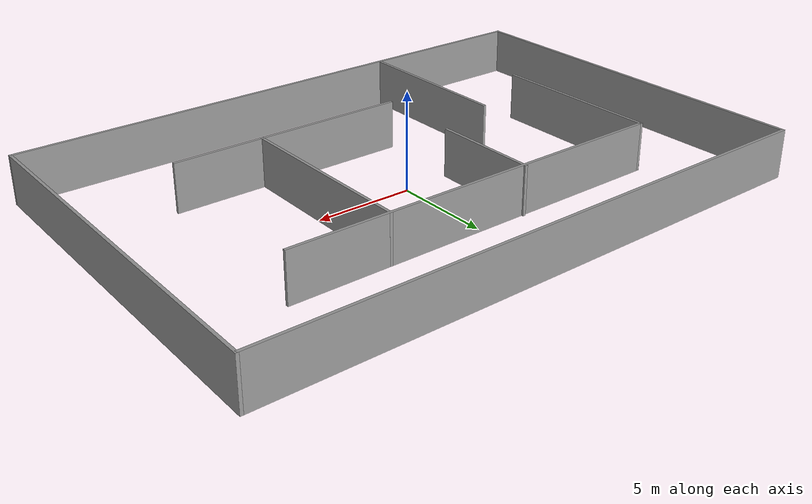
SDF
<?xml version='1.0'?>
<sdf version='1.7'>
  <model name='base.world'>
    <pose>0 0 0 0 -0 0</pose>
    <link name='Wall_0'>
      <collision name='Wall_0_Collision'>
        <geometry>
          <box>
            <size>20.15 0.15 2.5</size>
          </box>
        </geometry>
        <pose>0 0 1.25 0 -0 0</pose>
      </collision>
      <visual name='Wall_0_Visual'>
        <pose>0 0 1.25 0 -0 0</pose>
        <geometry>
          <box>
            <size>20.15 0.15 2.5</size>
          </box>
        </geometry>
        <material>
          <script>
            <uri>file://media/materials/scripts/gazebo.material</uri>
            <name>Gazebo/Grey</name>
          </script>
          <ambient>1 1 1 1</ambient>
        </material>
        <meta>
          <layer>0</layer>
        </meta>
      </visual>
      <pose>-15 0 0 0 -0 1.5708</pose>
    </link>
    <link name='Wall_11'>
      <collision name='Wall_11_Collision'>
        <geometry>
          <box>
            <size>9 0.15 2.5</size>
          </box>
        </geometry>
        <pose>0 0 1.25 0 -0 0</pose>
      </collision>
      <visual name='Wall_11_Visual'>
        <pose>0 0 1.25 0 -0 0</pose>
        <geometry>
          <box>
            <size>9 0.15 2.5</size>
          </box>
        </geometry>
        <material>
          <script>
            <uri>file://media/materials/scripts/gazebo.material</uri>
            <name>Gazebo/Grey</name>
          </script>
          <ambient>1 1 1 1</ambient>
        </material>
        <meta>
          <layer>0</layer>
        </meta>
      </visual>
      <pose>-10.331 0.772623 0 0 -0 1.5708</pose>
    </link>
    <link name='Wall_12'>
      <collision name='Wall_12_Collision'>
        <geometry>
          <box>
            <size>20.5 0.15 2.5</size>
          </box>
        </geometry>
        <pose>0 0 1.25 0 -0 0</pose>
      </collision>
      <visual name='Wall_12_Visual'>
        <pose>0 0 1.25 0 -0 0</pose>
        <geometry>
          <box>
            <size>20.5 0.15 2.5</size>
          </box>
        </geometry>
        <material>
          <script>
            <uri>file://media/materials/scripts/gazebo.material</uri>
            <name>Gazebo/Grey</name>
          </script>
          <ambient>1 1 1 1</ambient>
        </material>
        <meta>
          <layer>0</layer>
        </meta>
      </visual>
      <pose>-0.155983 5.19762 0 0 -0 0</pose>
    </link>
    <link name='Wall_14'>
      <collision name='Wall_14_Collision'>
        <geometry>
          <box>
            <size>8.829 0.15 2.5</size>
          </box>
        </geometry>
        <pose>0 0 1.25 0 -0 0</pose>
      </collision>
      <visual name='Wall_14_Visual'>
        <pose>0 0 1.25 0 -0 0</pose>
        <geometry>
          <box>
            <size>8.829 0.15 2.5</size>
          </box>
        </geometry>
        <material>
          <script>
            <uri>file://media/materials/scripts/gazebo.material</uri>
            <name>Gazebo/Grey</name>
          </script>
          <ambient>1 1 1 1</ambient>
        </material>
        <meta>
          <layer>0</layer>
        </meta>
      </visual>
      <pose>-6 -5.6605 0 0 -0 1.5708</pose>
    </link>
    <link name='Wall_16'>
      <collision name='Wall_16_Collision'>
        <geometry>
          <box>
            <size>9.982 0.15 2.5</size>
          </box>
        </geometry>
        <pose>0 0 1.25 0 -0 0</pose>
      </collision>
      <visual name='Wall_16_Visual'>
        <pose>0 0 1.25 0 -0 0</pose>
        <geometry>
          <box>
            <size>9.982 0.15 2.5</size>
          </box>
        </geometry>
        <material>
          <script>
            <uri>file://media/materials/scripts/gazebo.material</uri>
            <name>Gazebo/Grey</name>
          </script>
          <ambient>1 1 1 1</ambient>
        </material>
        <meta>
          <layer>0</layer>
        </meta>
      </visual>
      <pose>5 0.282 0 0 -0 -1.5708</pose>
    </link>
    <link name='Wall_18'>
      <collision name='Wall_18_Collision'>
        <geometry>
          <box>
            <size>4.721 0.15 2.5</size>
          </box>
        </geometry>
        <pose>0 0 1.25 0 -0 0</pose>
      </collision>
      <visual name='Wall_18_Visual'>
        <pose>0 0 1.25 0 -0 0</pose>
        <geometry>
          <box>
            <size>4.721 0.15 2.5</size>
          </box>
        </geometry>
        <material>
          <script>
            <uri>file://media/materials/scripts/gazebo.material</uri>
            <name>Gazebo/Grey</name>
          </script>
          <ambient>1 1 1 1</ambient>
        </material>
        <meta>
          <layer>0</layer>
        </meta>
      </visual>
      <pose>7.2855 -4.634 0 0 -0 0</pose>
    </link>
    <link name='Wall_2'>
      <collision name='Wall_2_Collision'>
        <geometry>
          <box>
            <size>20.15 0.15 2.5</size>
          </box>
        </geometry>
        <pose>0 0 1.25 0 -0 0</pose>
      </collision>
      <visual name='Wall_2_Visual'>
        <pose>0 0 1.25 0 -0 0</pose>
        <geometry>
          <box>
            <size>20.15 0.15 2.5</size>
          </box>
        </geometry>
        <material>
          <script>
            <uri>file://media/materials/scripts/gazebo.material</uri>
            <name>Gazebo/Grey</name>
          </script>
          <ambient>1 1 1 1</ambient>
        </material>
        <meta>
          <layer>0</layer>
        </meta>
      </visual>
      <pose>15 0 0 0 -0 -1.5708</pose>
    </link>
    <link name='Wall_20'>
      <collision name='Wall_20_Collision'>
        <geometry>
          <box>
            <size>7.75 0.15 2.5</size>
          </box>
        </geometry>
        <pose>0 0 1.25 0 -0 0</pose>
      </collision>
      <visual name='Wall_20_Visual'>
        <pose>0 0 1.25 0 -0 0</pose>
        <geometry>
          <box>
            <size>7.75 0.15 2.5</size>
          </box>
        </geometry>
        <material>
          <script>
            <uri>file://media/materials/scripts/gazebo.material</uri>
            <name>Gazebo/Grey</name>
          </script>
          <ambient>1 1 1 1</ambient>
        </material>
        <meta>
          <layer>0</layer>
        </meta>
      </visual>
      <pose>1.2 -4.634 0 0 -0 3.14159</pose>
    </link>
    <link name='Wall_22'>
      <collision name='Wall_22_Collision'>
        <geometry>
          <box>
            <size>5.5 0.15 2.5</size>
          </box>
        </geometry>
        <pose>0 0 1.25 0 -0 0</pose>
      </collision>
      <visual name='Wall_22_Visual'>
        <pose>0 0 1.25 0 -0 0</pose>
        <geometry>
          <box>
            <size>5.5 0.15 2.5</size>
          </box>
        </geometry>
        <material>
          <script>
            <uri>file://media/materials/scripts/gazebo.material</uri>
            <name>Gazebo/Grey</name>
          </script>
          <ambient>1 1 1 1</ambient>
        </material>
        <meta>
          <layer>0</layer>
        </meta>
      </visual>
      <pose>-2.50794 2.61201 0 0 -0 -1.5708</pose>
    </link>
    <link name='Wall_7'>
      <collision name='Wall_7_Collision'>
        <geometry>
          <box>
            <size>30.15 0.15 2.5</size>
          </box>
        </geometry>
        <pose>0 0 1.25 0 -0 0</pose>
      </collision>
      <visual name='Wall_7_Visual'>
        <pose>0 0 1.25 0 -0 0</pose>
        <geometry>
          <box>
            <size>30.15 0.15 2.5</size>
          </box>
        </geometry>
        <material>
          <script>
            <uri>file://media/materials/scripts/gazebo.material</uri>
            <name>Gazebo/Grey</name>
          </script>
          <ambient>1 1 1 1</ambient>
        </material>
        <meta>
          <layer>0</layer>
        </meta>
      </visual>
      <pose>0 10 0 0 -0 3.14159</pose>
    </link>
    <link name='Wall_9'>
      <collision name='Wall_9_Collision'>
        <geometry>
          <box>
            <size>30.15 0.15 2.5</size>
          </box>
        </geometry>
        <pose>0 0 1.25 0 -0 0</pose>
      </collision>
      <visual name='Wall_9_Visual'>
        <pose>0 0 1.25 0 -0 0</pose>
        <geometry>
          <box>
            <size>30.15 0.15 2.5</size>
          </box>
        </geometry>
        <material>
          <script>
            <uri>file://media/materials/scripts/gazebo.material</uri>
            <name>Gazebo/Grey</name>
          </script>
          <ambient>1 1 1 1</ambient>
        </material>
        <meta>
          <layer>0</layer>
        </meta>
      </visual>
      <pose>0 -10 0 0 -0 0</pose>
    </link>
    <static>1</static>
  </model>
</sdf>
